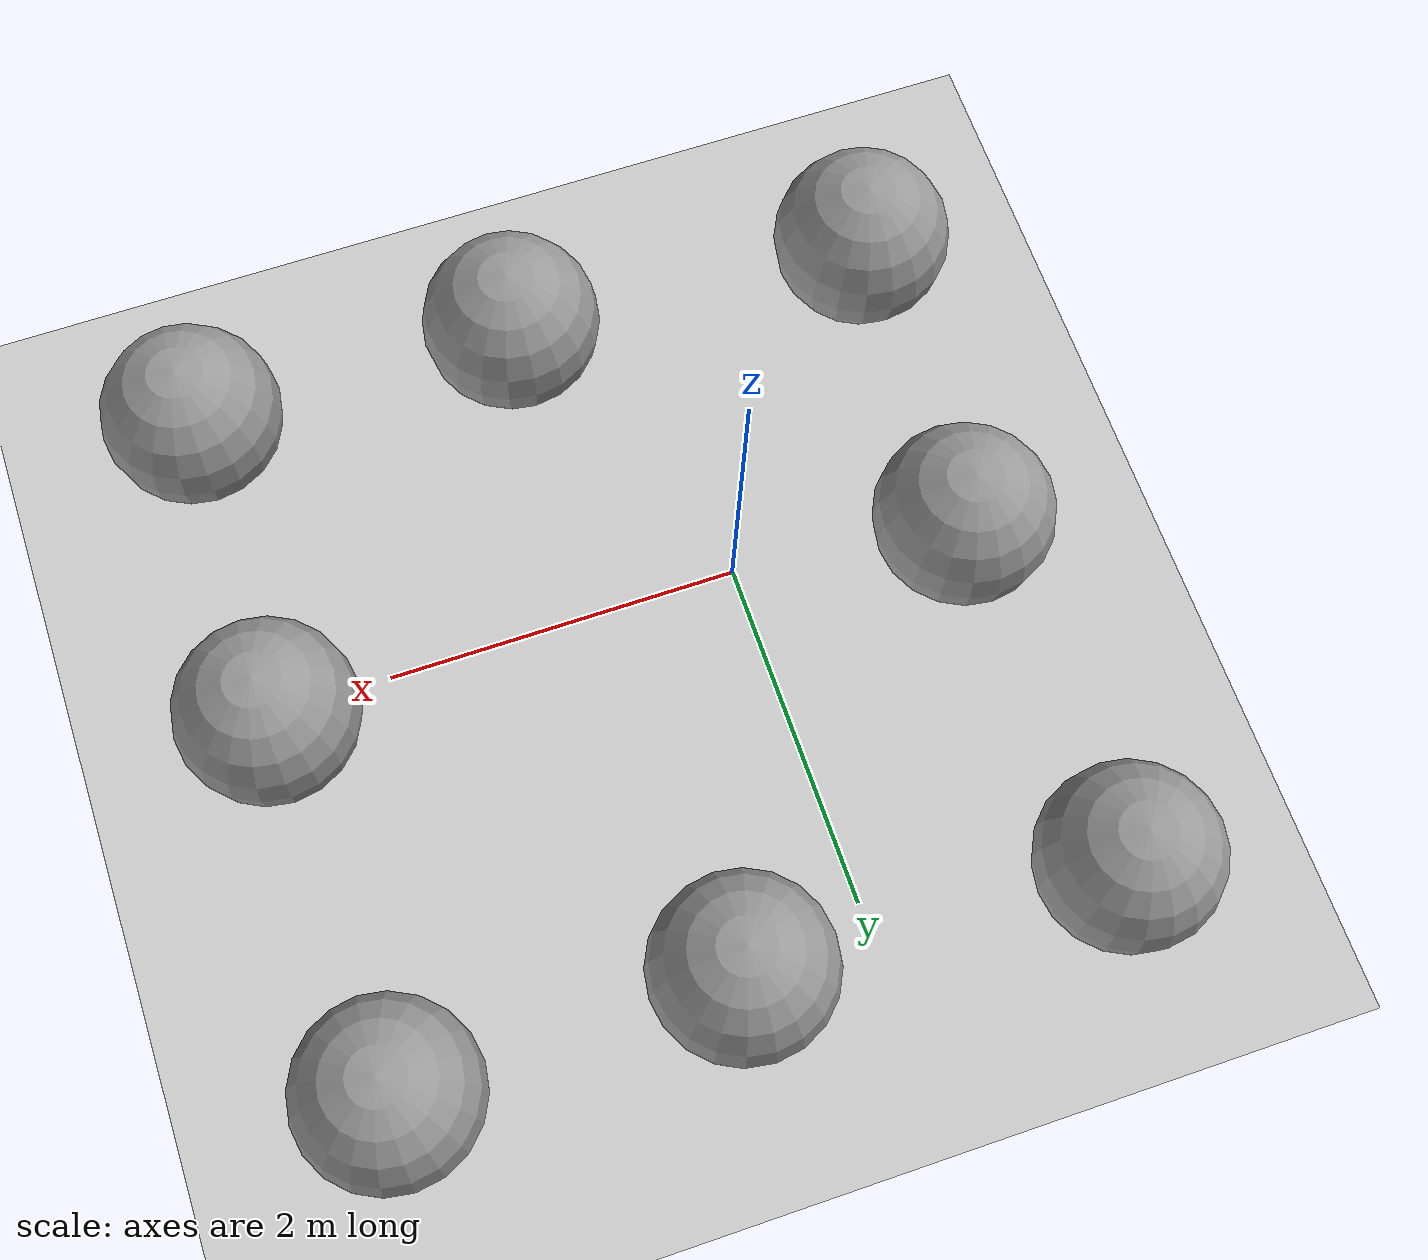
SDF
<sdf version="1.7">
 <world name="default">
  <light name="sun" type="directional">
   <pose>0 0 10 0 -0 0</pose>
   <diffuse>0.8 0.8 0.8 1</diffuse>
   <specular>0.2 0.2 0.2 1</specular>
   <attenuation>
    <range>1000</range>
    <constant>0.9</constant>
    <linear>0.01</linear>
    <quadratic>0.001</quadratic>
   </attenuation>
   <direction>-0.5 0.1 -0.9</direction>
   <spot><inner_angle>0</inner_angle><outer_angle>0</outer_angle><falloff>0</falloff></spot>
  </light>
  <model name="ground_plane">
   <static>1</static>
   <link name="link">
    <collision name="collision">
     <geometry><plane><normal>0 0 1</normal><size>100 100</size></plane></geometry>
     <surface>
      <contact><collide_bitmask>65535</collide_bitmask></contact>
      <friction><ode><mu>100</mu><mu2>50</mu2></ode></friction>
     </surface>
    </collision>
    <visual name="visual">
     <cast_shadows>0</cast_shadows>
     <geometry><plane><normal>0 0 1</normal><size>100 100</size></plane></geometry>
     <material>
      <script><uri>file://media/materials/scripts/gazebo.material</uri><name>Gazebo/Grey</name></script>
     </material>
    </visual>
   </link>
  </model>
  <gravity>0 0 -9.8</gravity>
  <magnetic_field>6e-06 2.3e-05 -4.2e-05</magnetic_field>
  <atmosphere type="adiabatic"/>
  <physics type="ode">
   <max_step_size>0.001</max_step_size>
   <real_time_factor>1</real_time_factor>
   <real_time_update_rate>1000</real_time_update_rate>
  </physics>
  <scene><ambient>0.4 0.4 0.4 1</ambient><background>0.7 0.7 0.7 1</background><shadows>1</shadows></scene>
  <audio><device>default</device></audio>
  <spherical_coordinates>
   <surface_model>EARTH_WGS84</surface_model>
   <latitude_deg>0</latitude_deg>
   <longitude_deg>0</longitude_deg>
   <elevation>0</elevation>
   <heading_deg>0</heading_deg>
  </spherical_coordinates>
  <model name="unit_sphere">
   <pose>-1.21565 0.262422 0.5 0 -0 0</pose>
   <link name="link">
    <inertial>
     <mass>1</mass>
     <inertia><ixx>0.1</ixx><ixy>0</ixy><ixz>0</ixz><iyy>0.1</iyy><iyz>0</iyz><izz>0.1</izz></inertia>
    </inertial>
    <collision name="collision"><geometry><sphere><radius>0.5</radius></sphere></geometry></collision>
    <visual name="visual">
     <geometry><sphere><radius>0.5</radius></sphere></geometry>
     <material>
      <script><name>Gazebo/Grey</name><uri>file://media/materials/scripts/gazebo.material</uri></script>
     </material>
    </visual>
   </link>
  </model>
  <model name="unit_sphere_0">
   <pose>-1.30845 2.31524 0.5 0 -0 0</pose>
   <link name="link">
    <inertial>
     <mass>1</mass>
     <inertia><ixx>0.1</ixx><ixy>0</ixy><ixz>0</ixz><iyy>0.1</iyy><iyz>0</iyz><izz>0.1</izz></inertia>
    </inertial>
    <collision name="collision"><geometry><sphere><radius>0.5</radius></sphere></geometry></collision>
    <visual name="visual">
     <geometry><sphere><radius>0.5</radius></sphere></geometry>
     <material>
      <script><name>Gazebo/Grey</name><uri>file://media/materials/scripts/gazebo.material</uri></script>
     </material>
    </visual>
   </link>
  </model>
  <model name="unit_sphere_1">
   <pose>0.751994 2.23006 0.5 0 -0 0</pose>
   <link name="link">
    <inertial>
     <mass>1</mass>
     <inertia><ixx>0.1</ixx><ixy>0</ixy><ixz>0</ixz><iyy>0.1</iyy><iyz>0</iyz><izz>0.1</izz></inertia>
    </inertial>
    <collision name="collision"><geometry><sphere><radius>0.5</radius></sphere></geometry></collision>
    <visual name="visual">
     <geometry><sphere><radius>0.5</radius></sphere></geometry>
     <material>
      <script><name>Gazebo/Grey</name><uri>file://media/materials/scripts/gazebo.material</uri></script>
     </material>
    </visual>
   </link>
  </model>
  <model name="unit_sphere_2">
   <pose>2.61341 2.2629 0.5 0 -0 0</pose>
   <link name="link">
    <inertial>
     <mass>1</mass>
     <inertia><ixx>0.1</ixx><ixy>0</ixy><ixz>0</ixz><iyy>0.1</iyy><iyz>0</iyz><izz>0.1</izz></inertia>
    </inertial>
    <collision name="collision"><geometry><sphere><radius>0.5</radius></sphere></geometry></collision>
    <visual name="visual">
     <geometry><sphere><radius>0.5</radius></sphere></geometry>
     <material>
      <script><name>Gazebo/Grey</name><uri>file://media/materials/scripts/gazebo.material</uri></script>
     </material>
    </visual>
   </link>
  </model>
  <model name="unit_sphere_3">
   <pose>2.66369 0.156724 0.5 0 -0 0</pose>
   <link name="link">
    <inertial>
     <mass>1</mass>
     <inertia><ixx>0.1</ixx><ixy>0</ixy><ixz>0</ixz><iyy>0.1</iyy><iyz>0</iyz><izz>0.1</izz></inertia>
    </inertial>
    <collision name="collision"><geometry><sphere><radius>0.5</radius></sphere></geometry></collision>
    <visual name="visual">
     <geometry><sphere><radius>0.5</radius></sphere></geometry>
     <material>
      <script><name>Gazebo/Grey</name><uri>file://media/materials/scripts/gazebo.material</uri></script>
     </material>
    </visual>
   </link>
  </model>
  <model name="unit_sphere_4">
   <pose>-1.29839 -1.54235 0.5 0 -0 0</pose>
   <link name="link">
    <inertial>
     <mass>1</mass>
     <inertia><ixx>0.1</ixx><ixy>0</ixy><ixz>0</ixz><iyy>0.1</iyy><iyz>0</iyz><izz>0.1</izz></inertia>
    </inertial>
    <collision name="collision"><geometry><sphere><radius>0.5</radius></sphere></geometry></collision>
    <visual name="visual">
     <geometry><sphere><radius>0.5</radius></sphere></geometry>
     <material>
      <script><name>Gazebo/Grey</name><uri>file://media/materials/scripts/gazebo.material</uri></script>
     </material>
    </visual>
   </link>
  </model>
  <model name="unit_sphere_5">
   <pose>0.762929 -1.65556 0.5 0 -0 0</pose>
   <link name="link">
    <inertial>
     <mass>1</mass>
     <inertia><ixx>0.1</ixx><ixy>0</ixy><ixz>0</ixz><iyy>0.1</iyy><iyz>0</iyz><izz>0.1</izz></inertia>
    </inertial>
    <collision name="collision"><geometry><sphere><radius>0.5</radius></sphere></geometry></collision>
    <visual name="visual">
     <geometry><sphere><radius>0.5</radius></sphere></geometry>
     <material>
      <script><name>Gazebo/Grey</name><uri>file://media/materials/scripts/gazebo.material</uri></script>
     </material>
    </visual>
   </link>
  </model>
  <model name="unit_sphere_6">
   <pose>2.60982 -1.65625 0.5 0 -0 0</pose>
   <link name="link">
    <inertial>
     <mass>1</mass>
     <inertia><ixx>0.1</ixx><ixy>0</ixy><ixz>0</ixz><iyy>0.1</iyy><iyz>0</iyz><izz>0.1</izz></inertia>
    </inertial>
    <collision name="collision"><geometry><sphere><radius>0.5</radius></sphere></geometry></collision>
    <visual name="visual">
     <geometry><sphere><radius>0.5</radius></sphere></geometry>
     <material>
      <script><name>Gazebo/Grey</name><uri>file://media/materials/scripts/gazebo.material</uri></script>
     </material>
    </visual>
   </link>
  </model>
 </world>
</sdf>
